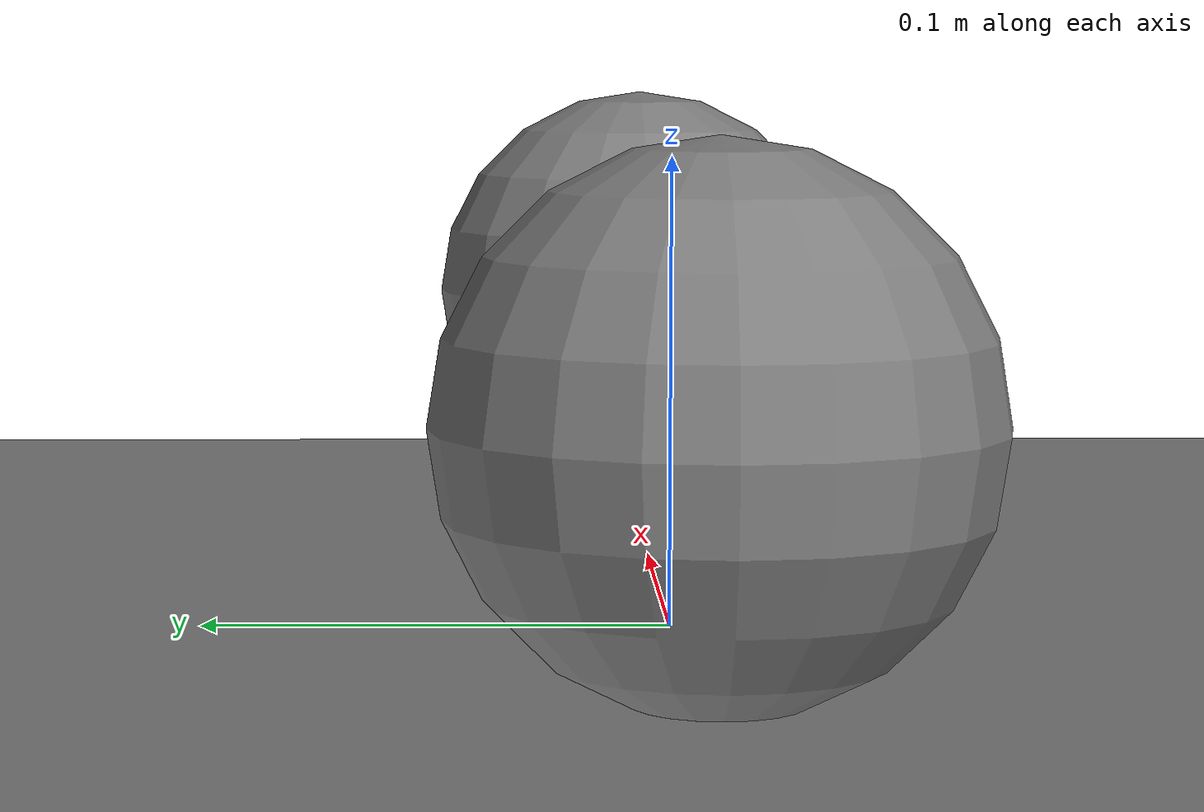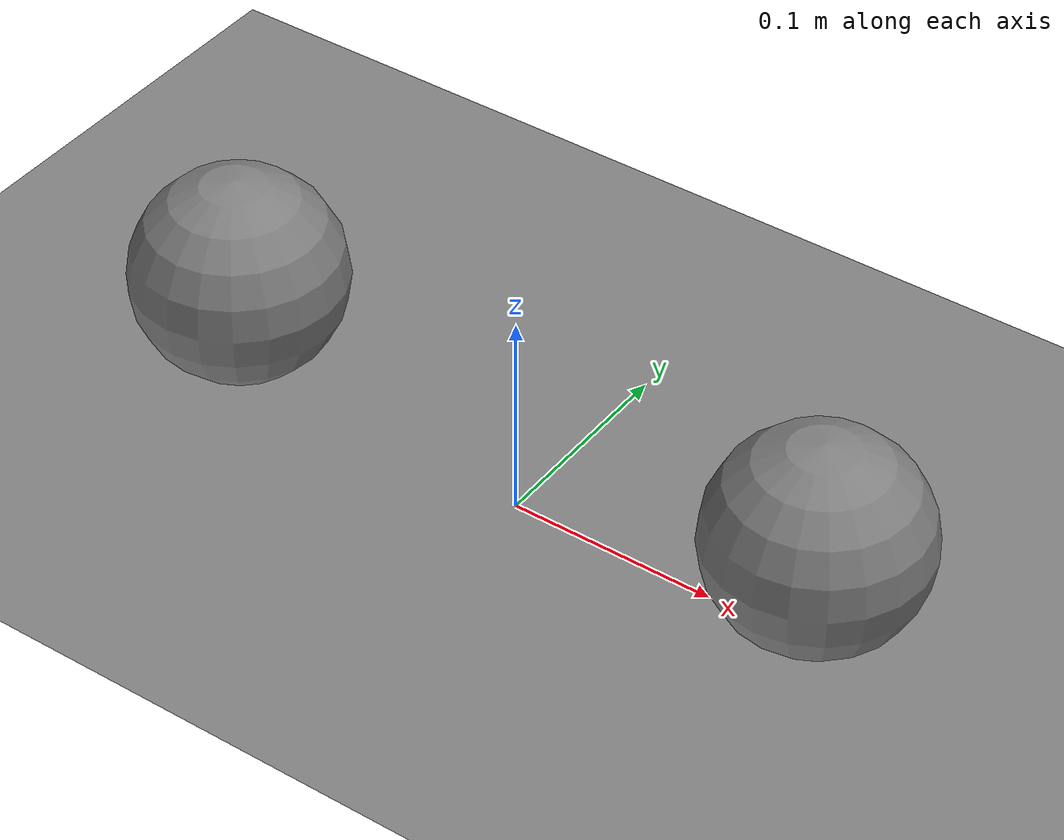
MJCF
<mujoco model="solimp-depth">
          <option gravity="0 0 -9.81" timestep="0.001" solver="Newton"
                  iterations="50" tolerance="1e-10"/>

          <worldbody>
            <geom name="ground" type="plane" size="5 5 0.01"/>

            <!-- Default solimp: d0=0.9, stiff from the start -->
            <body name="stiff" pos="-0.15 0 0.06">
              <freejoint/>
              <geom name="g_stiff" type="sphere" size="0.05" mass="2"/>
            </body>

            <!-- Soft start: d0=0.1, wide transition (50mm) -->
            <body name="soft" pos="0.15 0 0.06">
              <freejoint/>
              <geom name="g_soft" type="sphere" size="0.05" mass="2"/>
            </body>
          </worldbody>

          <contact>
            <pair geom1="ground" geom2="g_stiff"
                  solimp="0.9 0.95 0.001 0.5 2" condim="1"/>
            <pair geom1="ground" geom2="g_soft"
                  solimp="0.1 0.95 0.05 0.5 2" condim="1"/>
          </contact>
        </mujoco>
